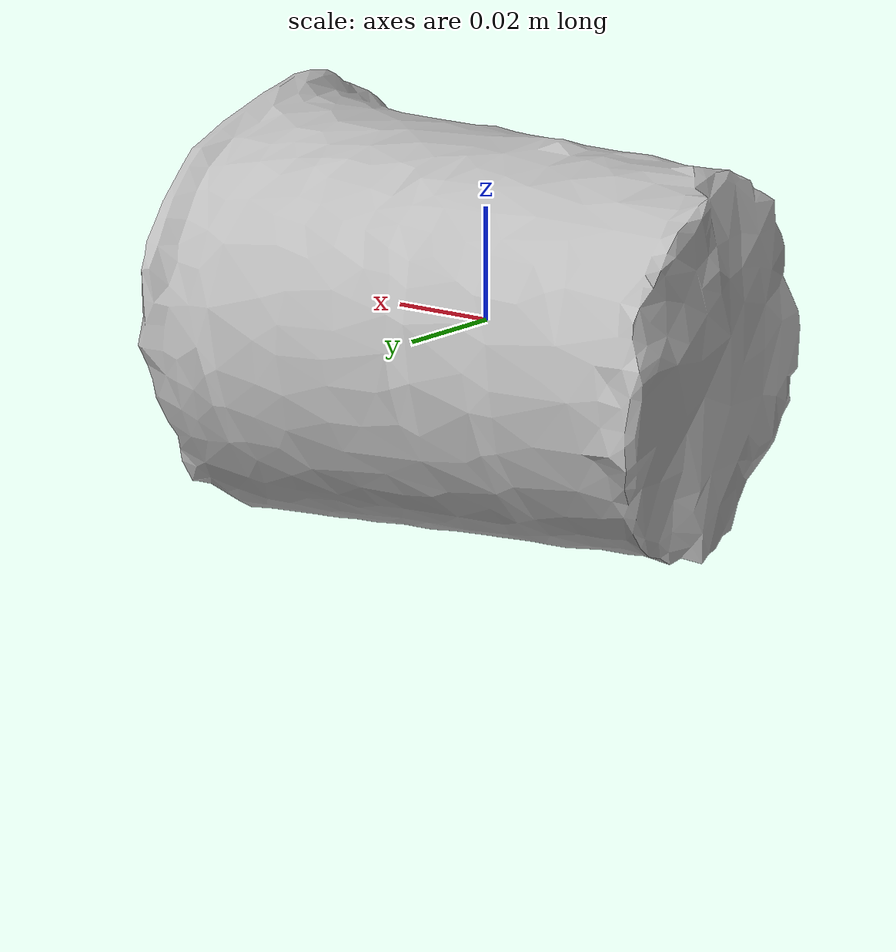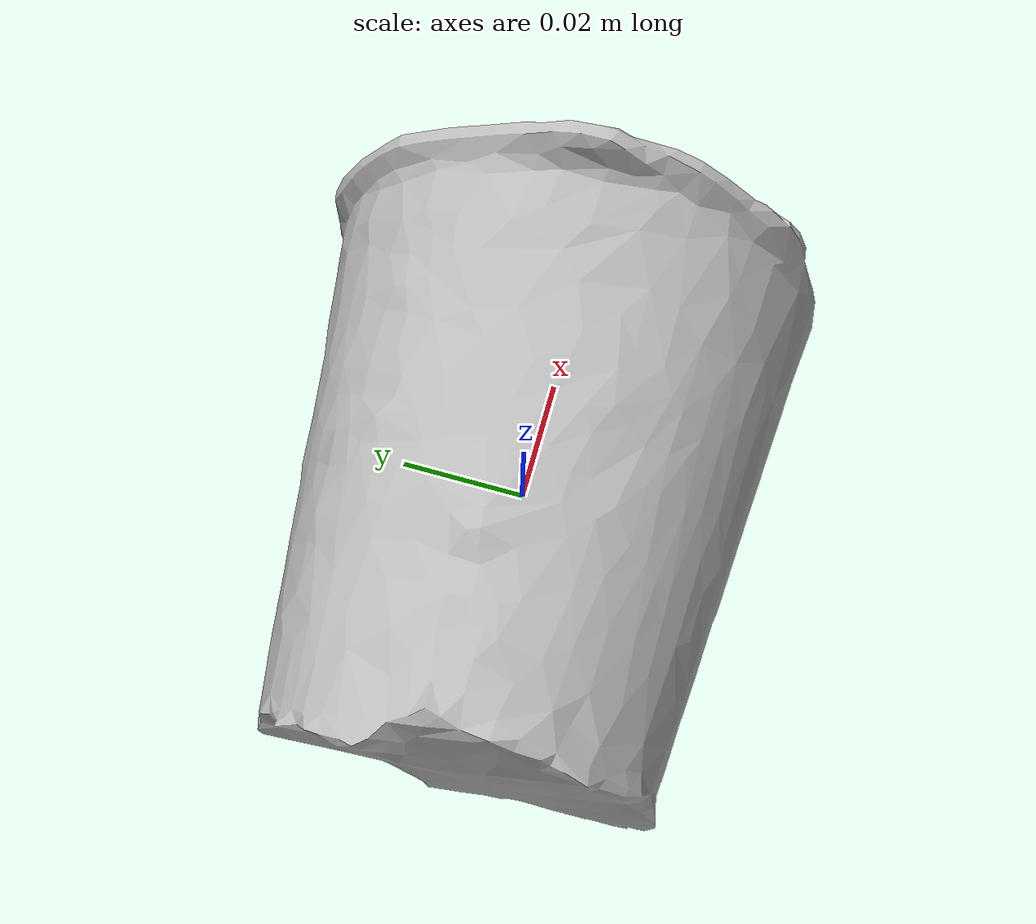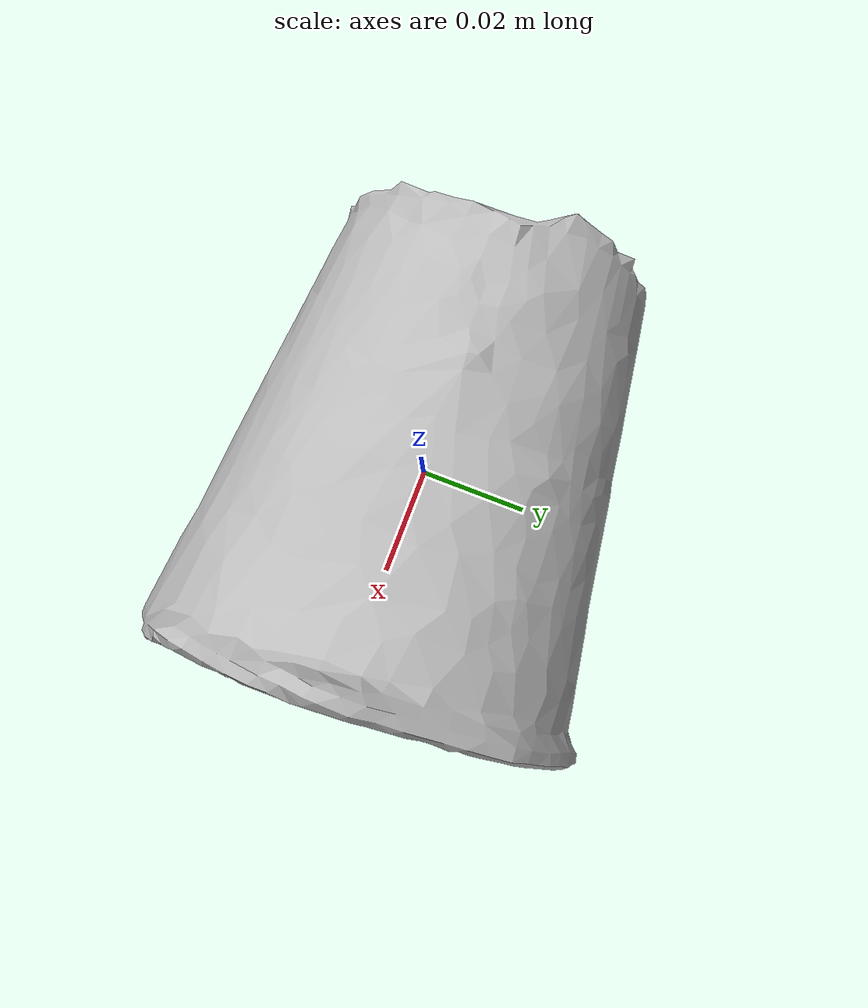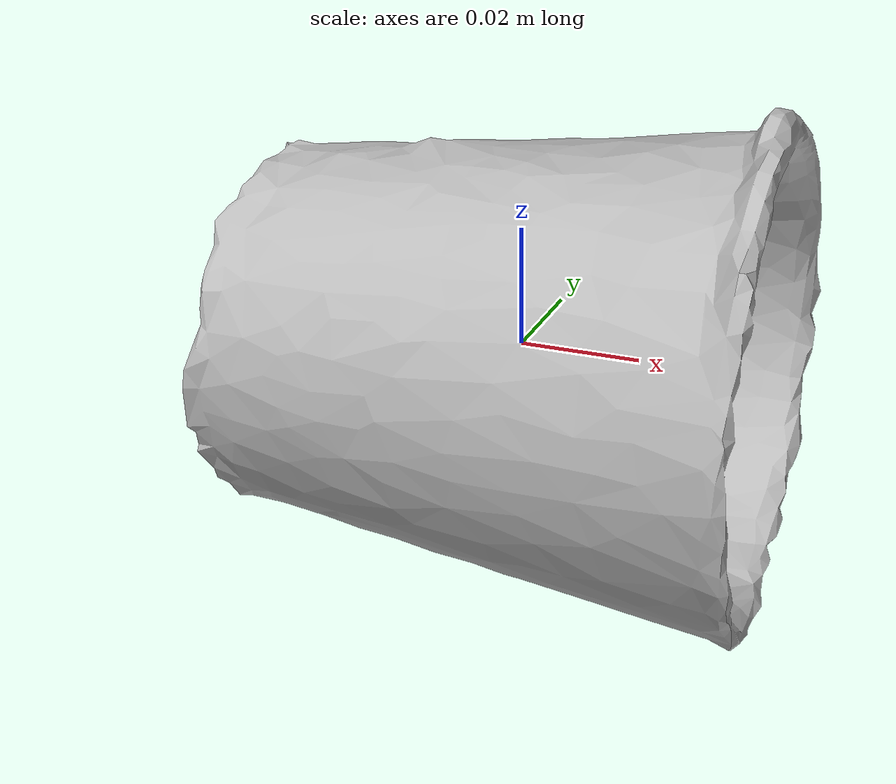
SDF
<?xml version='1.0'?>
<sdf version='1.6'>
	<model name='b_coffee_cup'>
		<static>false</static>
		<pose>0 0 0 0 0 0</pose>

		<link name='link'>
			<inertial>
			<mass>0.1</mass>
			<pose>-2.03e-05 0.001225 -0.00019831 0 0 0</pose>
				<inertia>
					<ixx>7.571e-07</ixx>
					<ixy>0</ixy>
					<ixz>0</ixz>
					<iyy>6.1374e-07</iyy>
					<iyz>0</iyz>
					<izz>6.0131e-07</izz>
				</inertia>
			</inertial>
			<collision name='collision'>
				<geometry>
					<mesh>
						<uri>model://b_coffee_cup/b_coffee_cup.dae</uri>
					</mesh>
				</geometry>
				<surface>
					<friction>
						<ode>
							<mu>0.2</mu>
							<mu2>0.2</mu2>
						</ode>
					</friction>
				</surface>
			</collision>
			<visual name='visual'>
				<geometry>
					<mesh>
						<uri>model://b_coffee_cup/b_coffee_cup.dae</uri>
					</mesh>
				</geometry>
			</visual>
		</link>
	</model>
</sdf>
